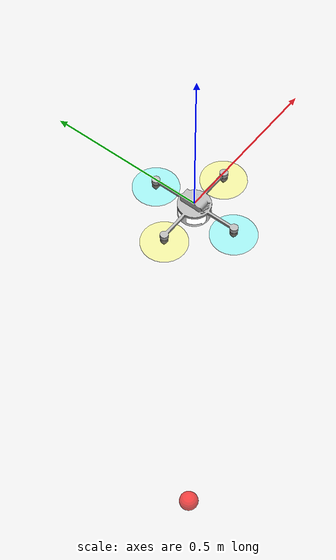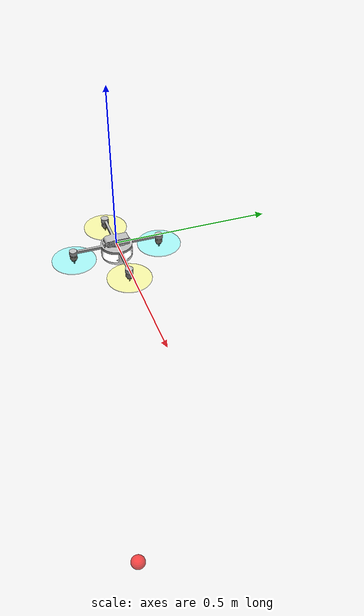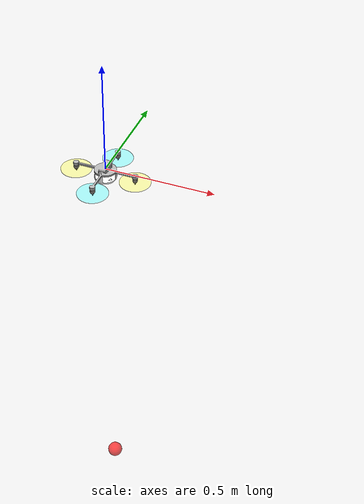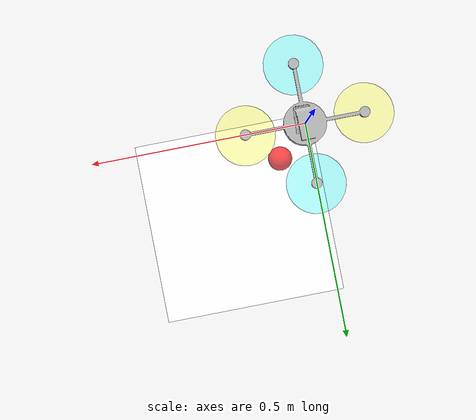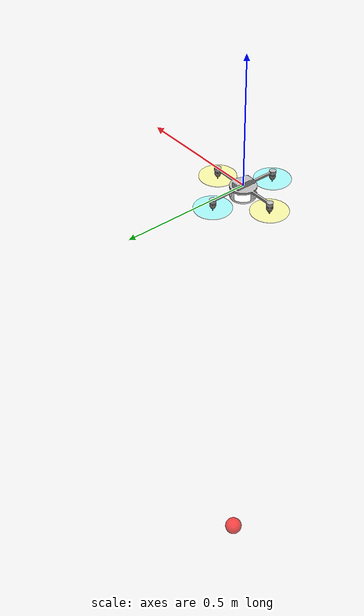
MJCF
<mujoco model="quad">
    <compiler inertiafromgeom="true" coordinate="local" balanceinertia="true" discardvisual="false" meshdir="meshes/quadrotor/"/>
    <size njmax="500" nconmax="100" nuserdata="4" />

    <option timestep="0.015">
		<flag warmstart="enable" />
	</option>

    <default>
        <geom contype="0" />
    </default>

    <asset>
        <mesh name="body" file="body.STL" />
        <mesh name="cover" file="cover.STL" />
        <mesh name="motor1" file="motor1.STL" />
        <mesh name="prop1" file="prop1.STL" />
        <mesh name="motor2" file="motor2.STL" />
        <mesh name="prop2" file="prop2.STL" />
        <mesh name="motor3" file="motor3.STL" />
        <mesh name="prop3" file="prop3.STL" />
        <mesh name="motor4" file="motor4.STL" />
        <mesh name="prop4" file="prop4.STL" />
        <texture type="skybox" builtin="gradient" width="128" height="128" rgb1=".4 .6 .8" rgb2="0 0 0"/>
        <texture name="texgeom" type="cube" builtin="flat" mark="cross" width="127" height="1278" rgb1="0.8 0.6 0.4" rgb2="0.8 0.6 0.4" markrgb="1 1 1" random="0.01"/>
        <!--texture name="texplane" type="2d" builtin="checker" rgb1=".2 .3 .4" rgb2=".1 0.15 0.2" width="512" height="512"/-->
        <texture name="texplane" type="2d" builtin="checker" rgb1="0 0 0" rgb2="1 1 1" width="512" height="512"/>
        <material name='MatPlane' reflectance='0.5' texture="texplane" texrepeat="1 1" texuniform="true"/>
        <material name='geom' texture="texgeom" texuniform="true"/>
    </asset>

    <worldbody>

        <light directional='true' diffuse='.8 .8 .8' specular='0.3 0.3 0.3' pos='0 0 4.0' dir='0 0 -1'/>
		<geom name="floor" pos="0 0 -5" size="10 10 .2" type="plane" material="MatPlane" conaffinity="1" rgba="1 1 1 0.1" condim="3"/>
		<geom name="goal" pos="0 0 -2" size=".04 .04 .04" type="sphere" rgba="1 0 0 0.7"/>

        <body name="quadrotor" pos="0 0 0" quat="0 1 0 0">
            <joint name="root" type="free" damping="0" armature="0" pos="0 0 0"/>
            <geom name="body" type="mesh" rgba="0.7 0.7 0.7 1" mesh="body"  quat="0 1 0 0"/>
            <geom name="cover" type="mesh" rgba="1 1 1 1" mesh="cover" quat="0 1 0 0"/>
            <geom name="motor1" type="mesh" pos="0.14 0 -0.0025" rgba="0.568627 0.54902 0.509804 1" mesh="motor1" quat="0 1 0 0" />
            <geom name="motor2" type="mesh" pos="-0.14 0 -0.0025" rgba="0.568627 0.54902 0.509804 1" mesh="motor2" quat="0 1 0 0" />
            <geom name="motor3" type="mesh" pos="0 -0.14 -0.0025" rgba="0.568627 0.54902 0.509804 1" mesh="motor3" quat="0 1 0 0" />
            <geom name="motor4" type="mesh" pos="0 0.14 -0.0025" rgba="0.568627 0.54902 0.509804 1" mesh="motor4" quat="0 1 0 0" />
            <geom name="prop1" type="cylinder" pos="0.14 0 0.0325" size="0.07 0.0015"  quat = "0 1 0 0" rgba="1 1 0 0.3" mass = ".025"/>
            <geom name="prop2" type="cylinder" pos="-0.14 0 0.0325" size="0.07 0.0015"  quat = "0 1 0 0" rgba="1 1 0 0.3" mass = ".025"/>
            <geom name="prop3" type="cylinder" pos="0 -0.14 0.0325" size="0.07 0.0015"  quat = "0 1 0 0" rgba="0 1 1 0.3" mass = ".025"/>
            <geom name="prop4" type="cylinder" pos="0 0.14 0.0325" size="0.07 0.0015"  quat = "0 1 0 0" rgba="0 1 1 0.3" mass = ".025"/>
        </body>
    </worldbody>
</mujoco>
